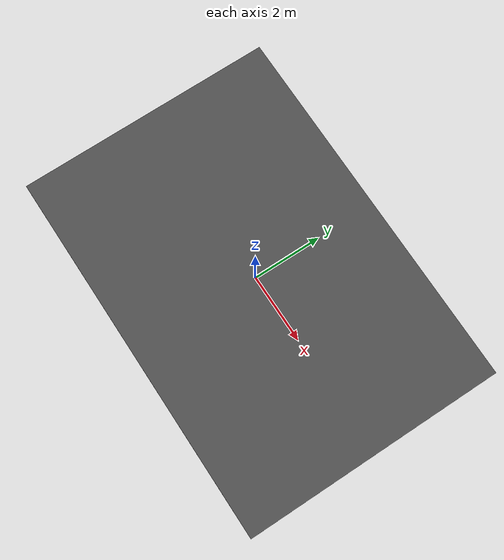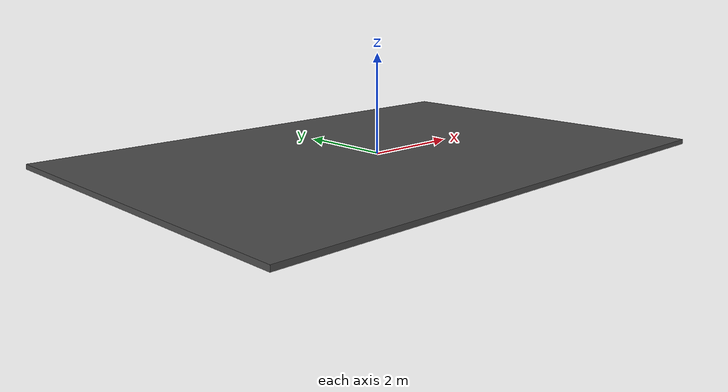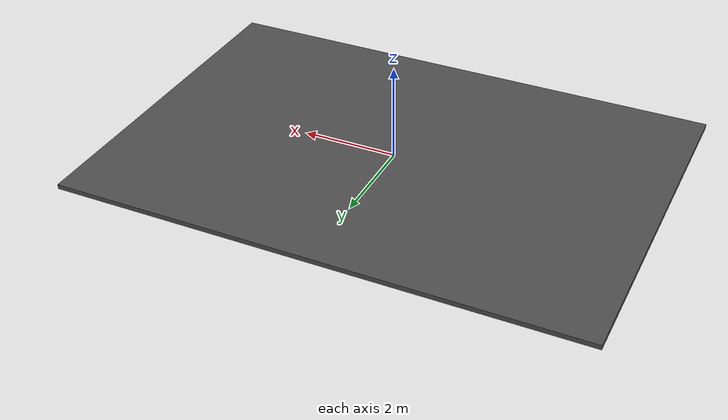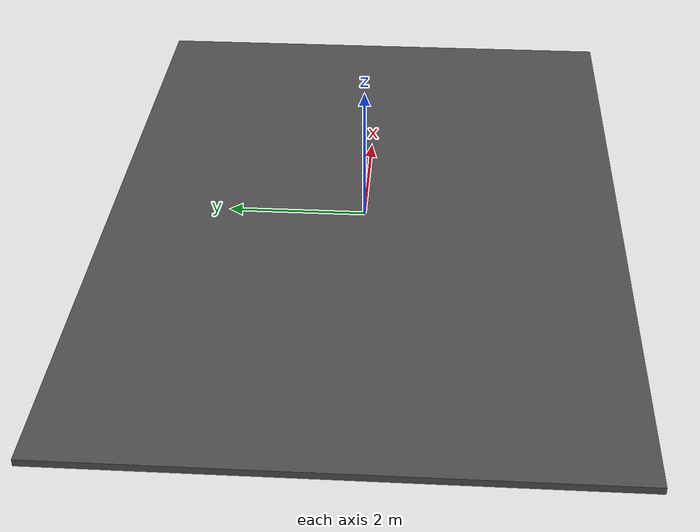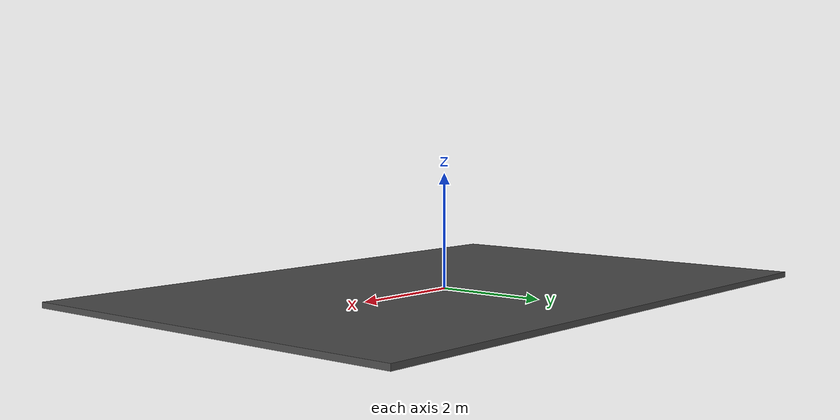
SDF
<?xml version="1.0" ?>
<sdf version="1.5">
  <model name="asphalt_plane">
    <static>true</static>
    <link name="link">
      <collision name="collision">
        <geometry>
          <box>
            <size>11 7.5 .1</size>
          </box>
        </geometry>
      </collision>
      <visual name="visual">
        <cast_shadows>false</cast_shadows>
        <geometry>
          <box>
            <size>11 7.5 .1</size>
          </box>
        </geometry>
        <material>
          <script>
            <uri>model://floor/materials/scripts</uri>
            <uri>model://floor/materials/textures</uri>
            <name>vrc/asphalt</name>
          </script>
        </material>
      </visual>
    </link>
  </model>
</sdf>
